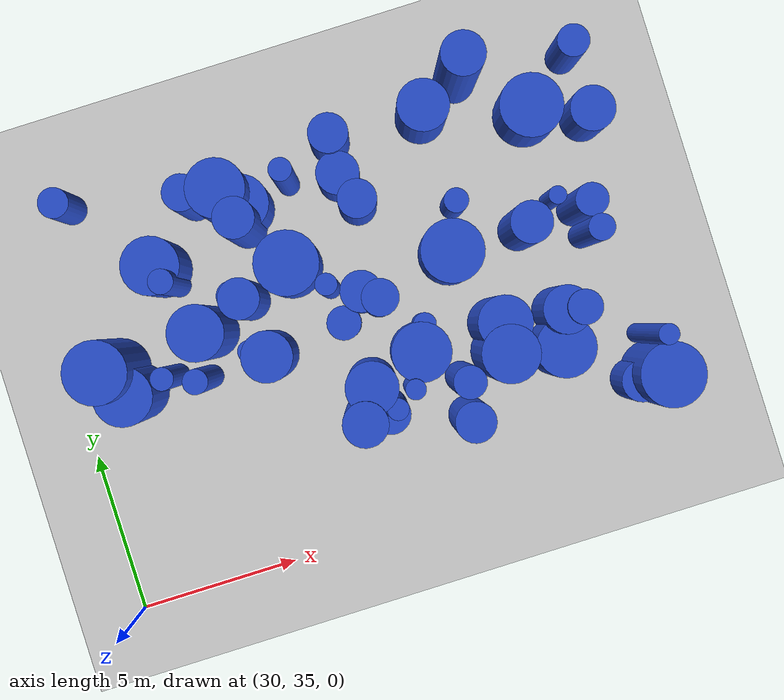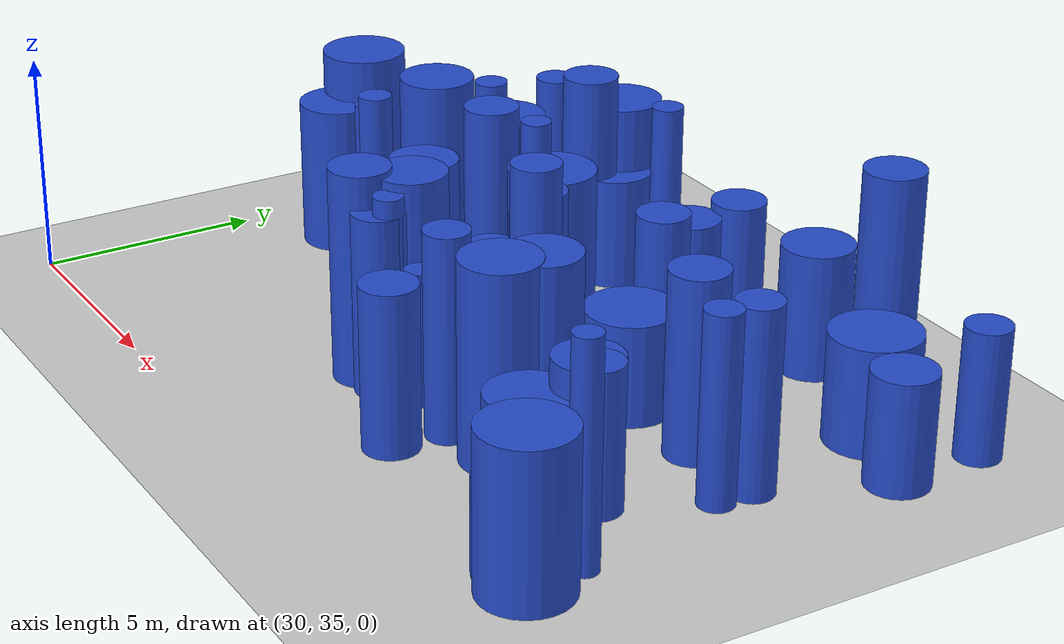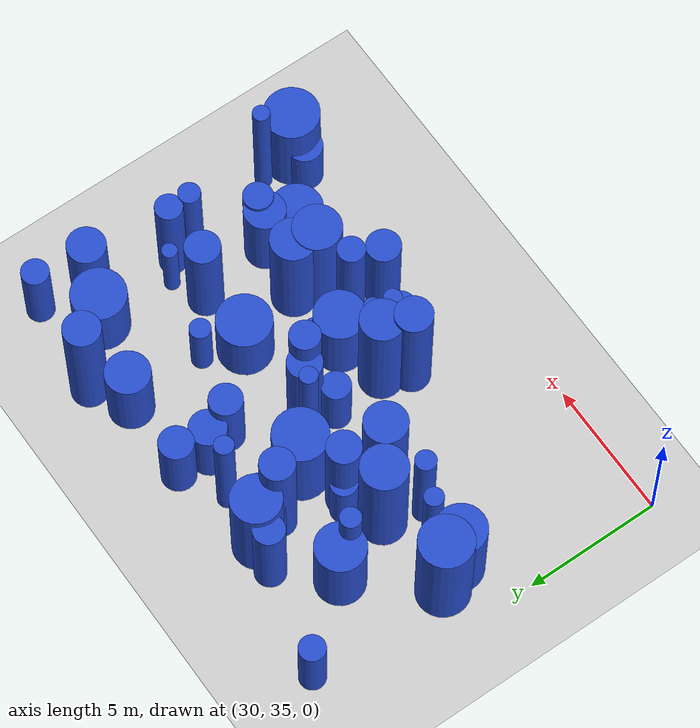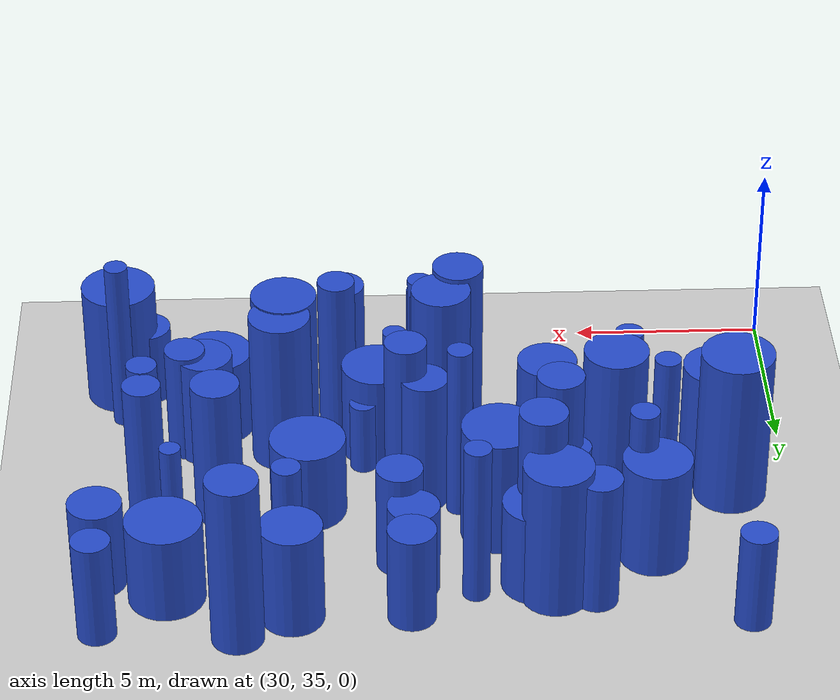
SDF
<sdf version="1.6">
 <world name="default">
  <model name="ground_plane">
   <static>1</static>
   <link name="link">
    <collision name="collision">
     <geometry><plane><normal>0 0 1</normal><size>100 100</size></plane></geometry>
     <surface><friction><ode><mu>100</mu><mu2>50</mu2></ode></friction></surface>
    </collision>
    <visual name="visual">
     <cast_shadows>0</cast_shadows>
     <geometry><plane><normal>0 0 1</normal><size>100 100</size></plane></geometry>
     <material>
      <script><uri>file://media/materials/scripts/gazebo.material</uri><name>Gazebo/Grey</name></script>
     </material>
    </visual>
   </link>
  </model>
  <model name="9">
   <static>0</static>
   <link name="link">
    <inertial>
     <mass>2</mass>
     <inertia><ixx>1.68993</ixx><ixy>0</ixy><ixz>0</ixz><iyy>1.68993</iyy><iyz>0</iyz><izz>0.640182</izz></inertia>
    </inertial>
    <collision name="collision">
     <geometry><cylinder><length>2.86689</length><radius>0.800114</radius></cylinder></geometry>
     <surface><contact><collide_without_contact>1</collide_without_contact></contact></surface>
    </collision>
    <visual name="visual">
     <geometry><cylinder><length>2.86689</length><radius>0.800114</radius></cylinder></geometry>
     <material>
      <script><uri>file://media/materials/scripts/gazebo.material</uri><name>Gazebo/Blue</name></script>
     </material>
    </visual>
    <gravity>0</gravity>
   </link>
   <pose>42.9643 47.197 1.43344 0 -0 0</pose>
  </model>
  <model name="15">
   <static>0</static>
   <link name="link">
    <inertial>
     <mass>2</mass>
     <inertia>
      <ixx>0.941599</ixx>
      <ixy>0</ixy>
      <ixz>0</ixz>
      <iyy>0.941599</iyy>
      <iyz>0</iyz>
      <izz>0.406003</izz>
     </inertia>
    </inertial>
    <collision name="collision">
     <geometry><cylinder><length>2.10513</length><radius>0.637184</radius></cylinder></geometry>
     <surface><contact><collide_without_contact>1</collide_without_contact></contact></surface>
    </collision>
    <visual name="visual">
     <geometry><cylinder><length>2.10513</length><radius>0.637184</radius></cylinder></geometry>
     <material>
      <script><uri>file://media/materials/scripts/gazebo.material</uri><name>Gazebo/Blue</name></script>
     </material>
    </visual>
    <gravity>0</gravity>
   </link>
   <pose>46.8697 37.3288 1.05257 0 -0 0</pose>
  </model>
  <model name="25">
   <static>0</static>
   <link name="link">
    <inertial>
     <mass>2</mass>
     <inertia><ixx>2.00158</ixx><ixy>0</ixy><ixz>0</ixz><iyy>2.00158</iyy><iyz>0</iyz><izz>0.12036</izz></inertia>
    </inertial>
    <collision name="collision">
     <geometry><cylinder><length>3.41298</length><radius>0.346929</radius></cylinder></geometry>
     <surface><contact><collide_without_contact>1</collide_without_contact></contact></surface>
    </collision>
    <visual name="visual">
     <geometry><cylinder><length>3.41298</length><radius>0.346929</radius></cylinder></geometry>
     <material>
      <script><uri>file://media/materials/scripts/gazebo.material</uri><name>Gazebo/Blue</name></script>
     </material>
    </visual>
    <gravity>0</gravity>
   </link>
   <pose>42.8894 40.3109 1.70649 0 -0 0</pose>
  </model>
  <model name="28">
   <static>0</static>
   <link name="link">
    <inertial>
     <mass>2</mass>
     <inertia><ixx>3.70127</ixx><ixy>0</ixy><ixz>0</ixz><iyy>3.70127</iyy><iyz>0</iyz><izz>0.908045</izz></inertia>
    </inertial>
    <collision name="collision">
     <geometry><cylinder><length>4.41401</length><radius>0.952914</radius></cylinder></geometry>
     <surface><contact><collide_without_contact>1</collide_without_contact></contact></surface>
    </collision>
    <visual name="visual">
     <geometry><cylinder><length>4.41401</length><radius>0.952914</radius></cylinder></geometry>
     <material>
      <script><uri>file://media/materials/scripts/gazebo.material</uri><name>Gazebo/Blue</name></script>
     </material>
    </visual>
    <gravity>0</gravity>
   </link>
   <pose>31.5585 42.4736 2.20701 0 -0 0</pose>
  </model>
  <model name="30">
   <static>0</static>
   <link name="link">
    <inertial>
     <mass>2</mass>
     <inertia><ixx>1.34983</ixx><ixy>0</ixy><ixz>0</ixz><iyy>1.34983</iyy><iyz>0</iyz><izz>0.973345</izz></inertia>
    </inertial>
    <collision name="collision">
     <geometry><cylinder><length>2.27573</length><radius>0.986583</radius></cylinder></geometry>
     <surface><contact><collide_without_contact>1</collide_without_contact></contact></surface>
    </collision>
    <visual name="visual">
     <geometry><cylinder><length>2.27573</length><radius>0.986583</radius></cylinder></geometry>
     <material>
      <script><uri>file://media/materials/scripts/gazebo.material</uri><name>Gazebo/Blue</name></script>
     </material>
    </visual>
    <gravity>0</gravity>
   </link>
   <pose>42.5501 42.8164 1.13786 0 -0 0</pose>
  </model>
  <model name="35">
   <static>0</static>
   <link name="link">
    <inertial>
     <mass>2</mass>
     <inertia><ixx>4.18085</ixx><ixy>0</ixy><ixz>0</ixz><iyy>4.18085</iyy><iyz>0</iyz><izz>0.105493</izz></inertia>
    </inertial>
    <collision name="collision">
     <geometry><cylinder><length>4.97681</length><radius>0.324796</radius></cylinder></geometry>
     <surface><contact><collide_without_contact>1</collide_without_contact></contact></surface>
    </collision>
    <visual name="visual">
     <geometry><cylinder><length>4.97681</length><radius>0.324796</radius></cylinder></geometry>
     <material>
      <script><uri>file://media/materials/scripts/gazebo.material</uri><name>Gazebo/Blue</name></script>
     </material>
    </visual>
    <gravity>0</gravity>
   </link>
   <pose>38.6592 42.8925 2.4884 0 -0 0</pose>
  </model>
  <model name="37">
   <static>0</static>
   <link name="link">
    <inertial>
     <mass>2</mass>
     <inertia><ixx>2.41909</ixx><ixy>0</ixy><ixz>0</ixz><iyy>2.41909</iyy><iyz>0</iyz><izz>0.120372</izz></inertia>
    </inertial>
    <collision name="collision">
     <geometry><cylinder><length>3.76211</length><radius>0.346947</radius></cylinder></geometry>
     <surface><contact><collide_without_contact>1</collide_without_contact></contact></surface>
    </collision>
    <visual name="visual">
     <geometry><cylinder><length>3.76211</length><radius>0.346947</radius></cylinder></geometry>
     <material>
      <script><uri>file://media/materials/scripts/gazebo.material</uri><name>Gazebo/Blue</name></script>
     </material>
    </visual>
    <gravity>0</gravity>
   </link>
   <pose>33.2468 41.7347 1.88105 0 -0 0</pose>
  </model>
  <model name="40">
   <static>0</static>
   <link name="link">
    <inertial>
     <mass>2</mass>
     <inertia><ixx>1.05673</ixx><ixy>0</ixy><ixz>0</ixz><iyy>1.05673</iyy><iyz>0</iyz><izz>0.145747</izz></inertia>
    </inertial>
    <collision name="collision">
     <geometry><cylinder><length>2.42964</length><radius>0.381768</radius></cylinder></geometry>
     <surface><contact><collide_without_contact>1</collide_without_contact></contact></surface>
    </collision>
    <visual name="visual">
     <geometry><cylinder><length>2.42964</length><radius>0.381768</radius></cylinder></geometry>
     <material>
      <script><uri>file://media/materials/scripts/gazebo.material</uri><name>Gazebo/Blue</name></script>
     </material>
    </visual>
    <gravity>0</gravity>
   </link>
   <pose>43.0934 44.2266 1.21482 0 -0 0</pose>
  </model>
  <model name="104">
   <static>0</static>
   <link name="link">
    <inertial>
     <mass>2</mass>
     <inertia>
      <ixx>0.736949</ixx>
      <ixy>0</ixy>
      <ixz>0</ixz>
      <iyy>0.736949</iyy>
      <iyz>0</iyz>
      <izz>0.125997</izz>
     </inertia>
    </inertial>
    <collision name="collision">
     <geometry><cylinder><length>2.0109</length><radius>0.354961</radius></cylinder></geometry>
     <surface><contact><collide_without_contact>1</collide_without_contact></contact></surface>
    </collision>
    <visual name="visual">
     <geometry><cylinder><length>2.0109</length><radius>0.354961</radius></cylinder></geometry>
     <material>
      <script><uri>file://media/materials/scripts/gazebo.material</uri><name>Gazebo/Blue</name></script>
     </material>
    </visual>
    <gravity>0</gravity>
   </link>
   <pose>41.095 40.9536 1.00545 0 -0 0</pose>
  </model>
  <model name="106">
   <static>0</static>
   <link name="link">
    <inertial>
     <mass>2</mass>
     <inertia><ixx>2.37876</ixx><ixy>0</ixy><ixz>0</ixz><iyy>2.37876</iyy><iyz>0</iyz><izz>0.378388</izz></inertia>
    </inertial>
    <collision name="collision">
     <geometry><cylinder><length>3.62456</length><radius>0.615133</radius></cylinder></geometry>
     <surface><contact><collide_without_contact>1</collide_without_contact></contact></surface>
    </collision>
    <visual name="visual">
     <geometry><cylinder><length>3.62456</length><radius>0.615133</radius></cylinder></geometry>
     <material>
      <script><uri>file://media/materials/scripts/gazebo.material</uri><name>Gazebo/Blue</name></script>
     </material>
    </visual>
    <gravity>0</gravity>
   </link>
   <pose>41.6078 37.7844 1.81228 0 -0 0</pose>
  </model>
  <model name="110">
   <static>0</static>
   <link name="link">
    <inertial>
     <mass>2</mass>
     <inertia><ixx>2.97227</ixx><ixy>0</ixy><ixz>0</ixz><iyy>2.97227</iyy><iyz>0</iyz><izz>0.242223</izz></inertia>
    </inertial>
    <collision name="collision">
     <geometry><cylinder><length>4.13605</length><radius>0.492161</radius></cylinder></geometry>
     <surface><contact><collide_without_contact>1</collide_without_contact></contact></surface>
    </collision>
    <visual name="visual">
     <geometry><cylinder><length>4.13605</length><radius>0.492161</radius></cylinder></geometry>
     <material>
      <script><uri>file://media/materials/scripts/gazebo.material</uri><name>Gazebo/Blue</name></script>
     </material>
    </visual>
    <gravity>0</gravity>
   </link>
   <pose>46.6972 42.9691 2.06803 0 -0 0</pose>
  </model>
  <model name="115">
   <static>0</static>
   <link name="link">
    <inertial>
     <mass>2</mass>
     <inertia><ixx>3.61971</ixx><ixy>0</ixy><ixz>0</ixz><iyy>3.61971</iyy><iyz>0</iyz><izz>0.745024</izz></inertia>
    </inertial>
    <collision name="collision">
     <geometry><cylinder><length>4.41398</length><radius>0.863148</radius></cylinder></geometry>
     <surface><contact><collide_without_contact>1</collide_without_contact></contact></surface>
    </collision>
    <visual name="visual">
     <geometry><cylinder><length>4.41398</length><radius>0.863148</radius></cylinder></geometry>
     <material>
      <script><uri>file://media/materials/scripts/gazebo.material</uri><name>Gazebo/Blue</name></script>
     </material>
    </visual>
    <gravity>0</gravity>
   </link>
   <pose>43.1164 39.4255 2.20699 0 -0 0</pose>
  </model>
  <model name="131">
   <static>0</static>
   <link name="link">
    <inertial>
     <mass>2</mass>
     <inertia><ixx>2.45671</ixx><ixy>0</ixy><ixz>0</ixz><iyy>2.45671</iyy><iyz>0</iyz><izz>0.599774</izz></inertia>
    </inertial>
    <collision name="collision">
     <geometry><cylinder><length>3.59735</length><radius>0.77445</radius></cylinder></geometry>
     <surface><contact><collide_without_contact>1</collide_without_contact></contact></surface>
    </collision>
    <visual name="visual">
     <geometry><cylinder><length>3.59735</length><radius>0.77445</radius></cylinder></geometry>
     <material>
      <script><uri>file://media/materials/scripts/gazebo.material</uri><name>Gazebo/Blue</name></script>
     </material>
    </visual>
    <gravity>0</gravity>
   </link>
   <pose>36.3397 41.4394 1.79867 0 -0 0</pose>
  </model>
  <model name="140">
   <static>0</static>
   <link name="link">
    <inertial>
     <mass>2</mass>
     <inertia><ixx>1.66226</ixx><ixy>0</ixy><ixz>0</ixz><iyy>1.66226</iyy><iyz>0</iyz><izz>0.357537</izz></inertia>
    </inertial>
    <collision name="collision">
     <geometry><cylinder><length>2.98345</length><radius>0.597944</radius></cylinder></geometry>
     <surface><contact><collide_without_contact>1</collide_without_contact></contact></surface>
    </collision>
    <visual name="visual">
     <geometry><cylinder><length>2.98345</length><radius>0.597944</radius></cylinder></geometry>
     <material>
      <script><uri>file://media/materials/scripts/gazebo.material</uri><name>Gazebo/Blue</name></script>
     </material>
    </visual>
    <gravity>0</gravity>
   </link>
   <pose>40.2521 45.1222 1.49172 0 -0 0</pose>
  </model>
  <model name="153">
   <static>0</static>
   <link name="link">
    <inertial>
     <mass>2</mass>
     <inertia><ixx>3.80109</ixx><ixy>0</ixy><ixz>0</ixz><iyy>3.80109</iyy><iyz>0</iyz><izz>0.299501</izz></inertia>
    </inertial>
    <collision name="collision">
     <geometry><cylinder><length>4.6806</length><radius>0.547266</radius></cylinder></geometry>
     <surface><contact><collide_without_contact>1</collide_without_contact></contact></surface>
    </collision>
    <visual name="visual">
     <geometry><cylinder><length>4.6806</length><radius>0.547266</radius></cylinder></geometry>
     <material>
      <script><uri>file://media/materials/scripts/gazebo.material</uri><name>Gazebo/Blue</name></script>
     </material>
    </visual>
    <gravity>0</gravity>
   </link>
   <pose>40.0122 42.0886 2.3403 0 -0 0</pose>
  </model>
  <model name="161">
   <static>0</static>
   <link name="link">
    <inertial>
     <mass>2</mass>
     <inertia><ixx>1.50176</ixx><ixy>0</ixy><ixz>0</ixz><iyy>1.50176</iyy><iyz>0</iyz><izz>0.788703</izz></inertia>
    </inertial>
    <collision name="collision">
     <geometry><cylinder><length>2.57769</length><radius>0.888089</radius></cylinder></geometry>
     <surface><contact><collide_without_contact>1</collide_without_contact></contact></surface>
    </collision>
    <visual name="visual">
     <geometry><cylinder><length>2.57769</length><radius>0.888089</radius></cylinder></geometry>
     <material>
      <script><uri>file://media/materials/scripts/gazebo.material</uri><name>Gazebo/Blue</name></script>
     </material>
    </visual>
    <gravity>0</gravity>
   </link>
   <pose>36.8547 46.0717 1.28884 0 -0 0</pose>
  </model>
  <model name="184">
   <static>0</static>
   <link name="link">
    <inertial>
     <mass>2</mass>
     <inertia><ixx>1.29878</ixx><ixy>0</ixy><ixz>0</ixz><iyy>1.29878</iyy><iyz>0</iyz><izz>0.120251</izz></inertia>
    </inertial>
    <collision name="collision">
     <geometry><cylinder><length>2.72616</length><radius>0.346772</radius></cylinder></geometry>
     <surface><contact><collide_without_contact>1</collide_without_contact></contact></surface>
    </collision>
    <visual name="visual">
     <geometry><cylinder><length>2.72616</length><radius>0.346772</radius></cylinder></geometry>
     <material>
      <script><uri>file://media/materials/scripts/gazebo.material</uri><name>Gazebo/Blue</name></script>
     </material>
    </visual>
    <gravity>0</gravity>
   </link>
   <pose>35.8162 41.7483 1.36308 0 -0 0</pose>
  </model>
  <model name="192">
   <static>0</static>
   <link name="link">
    <inertial>
     <mass>2</mass>
     <inertia><ixx>4.03755</ixx><ixy>0</ixy><ixz>0</ixz><iyy>4.03755</iyy><iyz>0</iyz><izz>0.45095</izz></inertia>
    </inertial>
    <collision name="collision">
     <geometry><cylinder><length>4.78251</length><radius>0.671528</radius></cylinder></geometry>
     <surface><contact><collide_without_contact>1</collide_without_contact></contact></surface>
    </collision>
    <visual name="visual">
     <geometry><cylinder><length>4.78251</length><radius>0.671528</radius></cylinder></geometry>
     <material>
      <script><uri>file://media/materials/scripts/gazebo.material</uri><name>Gazebo/Blue</name></script>
     </material>
    </visual>
    <gravity>0</gravity>
   </link>
   <pose>38.5385 38.7639 2.39126 0 -0 0</pose>
  </model>
  <model name="212">
   <static>0</static>
   <link name="link">
    <inertial>
     <mass>2</mass>
     <inertia><ixx>1.27304</ixx><ixy>0</ixy><ixz>0</ixz><iyy>1.27304</iyy><iyz>0</iyz><izz>0.482865</izz></inertia>
    </inertial>
    <collision name="collision">
     <geometry><cylinder><length>2.48789</length><radius>0.694885</radius></cylinder></geometry>
     <surface><contact><collide_without_contact>1</collide_without_contact></contact></surface>
    </collision>
    <visual name="visual">
     <geometry><cylinder><length>2.48789</length><radius>0.694885</radius></cylinder></geometry>
     <material>
      <script><uri>file://media/materials/scripts/gazebo.material</uri><name>Gazebo/Blue</name></script>
     </material>
    </visual>
    <gravity>0</gravity>
   </link>
   <pose>47.8332 45.6357 1.24395 0 -0 0</pose>
  </model>
  <model name="215">
   <static>0</static>
   <link name="link">
    <inertial>
     <mass>2</mass>
     <inertia><ixx>1.03096</ixx><ixy>0</ixy><ixz>0</ixz><iyy>1.03096</iyy><iyz>0</iyz><izz>0.226787</izz></inertia>
    </inertial>
    <collision name="collision">
     <geometry><cylinder><length>2.34636</length><radius>0.476222</radius></cylinder></geometry>
     <surface><contact><collide_without_contact>1</collide_without_contact></contact></surface>
    </collision>
    <visual name="visual">
     <geometry><cylinder><length>2.34636</length><radius>0.476222</radius></cylinder></geometry>
     <material>
      <script><uri>file://media/materials/scripts/gazebo.material</uri><name>Gazebo/Blue</name></script>
     </material>
    </visual>
    <gravity>0</gravity>
   </link>
   <pose>35.7849 43.5015 1.17318 0 -0 0</pose>
  </model>
  <model name="233">
   <static>0</static>
   <link name="link">
    <inertial>
     <mass>2</mass>
     <inertia><ixx>2.84357</ixx><ixy>0</ixy><ixz>0</ixz><iyy>2.84357</iyy><iyz>0</iyz><izz>0.142275</izz></inertia>
    </inertial>
    <collision name="collision">
     <geometry><cylinder><length>4.07855</length><radius>0.377194</radius></cylinder></geometry>
     <surface><contact><collide_without_contact>1</collide_without_contact></contact></surface>
    </collision>
    <visual name="visual">
     <geometry><cylinder><length>4.07855</length><radius>0.377194</radius></cylinder></geometry>
     <material>
      <script><uri>file://media/materials/scripts/gazebo.material</uri><name>Gazebo/Blue</name></script>
     </material>
    </visual>
    <gravity>0</gravity>
   </link>
   <pose>34.0992 44.4327 2.03928 0 -0 0</pose>
  </model>
  <model name="237">
   <static>0</static>
   <link name="link">
    <inertial>
     <mass>2</mass>
     <inertia><ixx>2.95964</ixx><ixy>0</ixy><ixz>0</ixz><iyy>2.95964</iyy><iyz>0</iyz><izz>0.400042</izz></inertia>
    </inertial>
    <collision name="collision">
     <geometry><cylinder><length>4.06912</length><radius>0.632489</radius></cylinder></geometry>
     <surface><contact><collide_without_contact>1</collide_without_contact></contact></surface>
    </collision>
    <visual name="visual">
     <geometry><cylinder><length>4.06912</length><radius>0.632489</radius></cylinder></geometry>
     <material>
      <script><uri>file://media/materials/scripts/gazebo.material</uri><name>Gazebo/Blue</name></script>
     </material>
    </visual>
    <gravity>0</gravity>
   </link>
   <pose>44.8521 42.8664 2.03456 0 -0 0</pose>
  </model>
  <model name="239">
   <static>0</static>
   <link name="link">
    <inertial>
     <mass>2</mass>
     <inertia><ixx>1.83196</ixx><ixy>0</ixy><ixz>0</ixz><iyy>1.83196</iyy><iyz>0</iyz><izz>0.283236</izz></inertia>
    </inertial>
    <collision name="collision">
     <geometry><cylinder><length>3.18466</length><radius>0.532199</radius></cylinder></geometry>
     <surface><contact><collide_without_contact>1</collide_without_contact></contact></surface>
    </collision>
    <visual name="visual">
     <geometry><cylinder><length>3.18466</length><radius>0.532199</radius></cylinder></geometry>
     <material>
      <script><uri>file://media/materials/scripts/gazebo.material</uri><name>Gazebo/Blue</name></script>
     </material>
    </visual>
    <gravity>0</gravity>
   </link>
   <pose>45.7332 40.0321 1.59233 0 -0 0</pose>
  </model>
  <model name="243">
   <static>0</static>
   <link name="link">
    <inertial>
     <mass>2</mass>
     <inertia><ixx>1.36174</ixx><ixy>0</ixy><ixz>0</ixz><iyy>1.36174</iyy><iyz>0</iyz><izz>0.22011</izz></inertia>
    </inertial>
    <collision name="collision">
     <geometry><cylinder><length>2.74046</length><radius>0.469159</radius></cylinder></geometry>
     <surface><contact><collide_without_contact>1</collide_without_contact></contact></surface>
    </collision>
    <visual name="visual">
     <geometry><cylinder><length>2.74046</length><radius>0.469159</radius></cylinder></geometry>
     <material>
      <script><uri>file://media/materials/scripts/gazebo.material</uri><name>Gazebo/Blue</name></script>
     </material>
    </visual>
    <gravity>0</gravity>
   </link>
   <pose>31.5642 47.7269 1.37023 0 -0 0</pose>
  </model>
  <model name="245">
   <static>0</static>
   <link name="link">
    <inertial>
     <mass>2</mass>
     <inertia>
      <ixx>1.58127</ixx>
      <ixy>0</ixy>
      <ixz>0</ixz>
      <iyy>1.58127</iyy>
      <iyz>0</iyz>
      <izz>0.0855253</izz>
     </inertia>
    </inertial>
    <collision name="collision">
     <geometry><cylinder><length>3.03827</length><radius>0.292447</radius></cylinder></geometry>
     <surface><contact><collide_without_contact>1</collide_without_contact></contact></surface>
    </collision>
    <visual name="visual">
     <geometry><cylinder><length>3.03827</length><radius>0.292447</radius></cylinder></geometry>
     <material>
      <script><uri>file://media/materials/scripts/gazebo.material</uri><name>Gazebo/Blue</name></script>
     </material>
    </visual>
    <gravity>0</gravity>
   </link>
   <pose>33.4925 44.957 1.51913 0 -0 0</pose>
  </model>
  <model name="259">
   <static>0</static>
   <link name="link">
    <inertial>
     <mass>2</mass>
     <inertia><ixx>3.51485</ixx><ixy>0</ixy><ixz>0</ixz><iyy>3.51485</iyy><iyz>0</iyz><izz>0.649994</izz></inertia>
    </inertial>
    <collision name="collision">
     <geometry><cylinder><length>4.37483</length><radius>0.806222</radius></cylinder></geometry>
     <surface><contact><collide_without_contact>1</collide_without_contact></contact></surface>
    </collision>
    <visual name="visual">
     <geometry><cylinder><length>4.37483</length><radius>0.806222</radius></cylinder></geometry>
     <material>
      <script><uri>file://media/materials/scripts/gazebo.material</uri><name>Gazebo/Blue</name></script>
     </material>
    </visual>
    <gravity>0</gravity>
   </link>
   <pose>43.2293 40.3251 2.18741 0 -0 0</pose>
  </model>
  <model name="275">
   <static>0</static>
   <link name="link">
    <inertial>
     <mass>2</mass>
     <inertia><ixx>2.62752</ixx><ixy>0</ixy><ixz>0</ixz><iyy>2.62752</iyy><iyz>0</iyz><izz>0.385146</izz></inertia>
    </inertial>
    <collision name="collision">
     <geometry><cylinder><length>3.82226</length><radius>0.620601</radius></cylinder></geometry>
     <surface><contact><collide_without_contact>1</collide_without_contact></contact></surface>
    </collision>
    <visual name="visual">
     <geometry><cylinder><length>3.82226</length><radius>0.620601</radius></cylinder></geometry>
     <material>
      <script><uri>file://media/materials/scripts/gazebo.material</uri><name>Gazebo/Blue</name></script>
     </material>
    </visual>
    <gravity>0</gravity>
   </link>
   <pose>39.5404 42.4374 1.91113 0 -0 0</pose>
  </model>
  <model name="276">
   <static>0</static>
   <link name="link">
    <inertial>
     <mass>2</mass>
     <inertia><ixx>1.95225</ixx><ixy>0</ixy><ixz>0</ixz><iyy>1.95225</iyy><iyz>0</iyz><izz>0.794959</izz></inertia>
    </inertial>
    <collision name="collision">
     <geometry><cylinder><length>3.05428</length><radius>0.891605</radius></cylinder></geometry>
     <surface><contact><collide_without_contact>1</collide_without_contact></contact></surface>
    </collision>
    <visual name="visual">
     <geometry><cylinder><length>3.05428</length><radius>0.891605</radius></cylinder></geometry>
     <material>
      <script><uri>file://media/materials/scripts/gazebo.material</uri><name>Gazebo/Blue</name></script>
     </material>
    </visual>
    <gravity>0</gravity>
   </link>
   <pose>33.7935 45.0467 1.52714 0 -0 0</pose>
  </model>
  <model name="284">
   <static>0</static>
   <link name="link">
    <inertial>
     <mass>2</mass>
     <inertia>
      <ixx>4.03619</ixx>
      <ixy>0</ixy>
      <ixz>0</ixz>
      <iyy>4.03619</iyy>
      <iyz>0</iyz>
      <izz>0.0936989</izz>
     </inertia>
    </inertial>
    <collision name="collision">
     <geometry><cylinder><length>4.89245</length><radius>0.306103</radius></cylinder></geometry>
     <surface><contact><collide_without_contact>1</collide_without_contact></contact></surface>
    </collision>
    <visual name="visual">
     <geometry><cylinder><length>4.89245</length><radius>0.306103</radius></cylinder></geometry>
     <material>
      <script><uri>file://media/materials/scripts/gazebo.material</uri><name>Gazebo/Blue</name></script>
     </material>
    </visual>
    <gravity>0</gravity>
   </link>
   <pose>47.4947 38.6512 2.44622 0 -0 0</pose>
  </model>
  <model name="296">
   <static>0</static>
   <link name="link">
    <inertial>
     <mass>2</mass>
     <inertia><ixx>1.42508</ixx><ixy>0</ixy><ixz>0</ixz><iyy>1.42508</iyy><iyz>0</iyz><izz>0.378466</izz></inertia>
    </inertial>
    <collision name="collision">
     <geometry><cylinder><length>2.72307</length><radius>0.615196</radius></cylinder></geometry>
     <surface><contact><collide_without_contact>1</collide_without_contact></contact></surface>
    </collision>
    <visual name="visual">
     <geometry><cylinder><length>2.72307</length><radius>0.615196</radius></cylinder></geometry>
     <material>
      <script><uri>file://media/materials/scripts/gazebo.material</uri><name>Gazebo/Blue</name></script>
     </material>
    </visual>
    <gravity>0</gravity>
   </link>
   <pose>40.0092 47.2708 1.36153 0 -0 0</pose>
  </model>
  <model name="301">
   <static>0</static>
   <link name="link">
    <inertial>
     <mass>2</mass>
     <inertia><ixx>1.53911</ixx><ixy>0</ixy><ixz>0</ixz><iyy>1.53911</iyy><iyz>0</iyz><izz>0.245079</izz></inertia>
    </inertial>
    <collision name="collision">
     <geometry><cylinder><length>2.91537</length><radius>0.495055</radius></cylinder></geometry>
     <surface><contact><collide_without_contact>1</collide_without_contact></contact></surface>
    </collision>
    <visual name="visual">
     <geometry><cylinder><length>2.91537</length><radius>0.495055</radius></cylinder></geometry>
     <material>
      <script><uri>file://media/materials/scripts/gazebo.material</uri><name>Gazebo/Blue</name></script>
     </material>
    </visual>
    <gravity>0</gravity>
   </link>
   <pose>47.7962 47.6853 1.45769 0 -0 0</pose>
  </model>
  <model name="306">
   <static>0</static>
   <link name="link">
    <inertial>
     <mass>2</mass>
     <inertia><ixx>2.44916</ixx><ixy>0</ixy><ixz>0</ixz><iyy>2.44916</iyy><iyz>0</iyz><izz>0.972924</izz></inertia>
    </inertial>
    <collision name="collision">
     <geometry><cylinder><length>3.43165</length><radius>0.986369</radius></cylinder></geometry>
     <surface><contact><collide_without_contact>1</collide_without_contact></contact></surface>
    </collision>
    <visual name="visual">
     <geometry><cylinder><length>3.43165</length><radius>0.986369</radius></cylinder></geometry>
     <material>
      <script><uri>file://media/materials/scripts/gazebo.material</uri><name>Gazebo/Blue</name></script>
     </material>
    </visual>
    <gravity>0</gravity>
   </link>
   <pose>47.5676 37.3707 1.71582 0 -0 0</pose>
  </model>
  <model name="309">
   <static>0</static>
   <link name="link">
    <inertial>
     <mass>2</mass>
     <inertia><ixx>3.91646</ixx><ixy>0</ixy><ixz>0</ixz><iyy>3.91646</iyy><iyz>0</iyz><izz>0.608507</izz></inertia>
    </inertial>
    <collision name="collision">
     <geometry><cylinder><length>4.65545</length><radius>0.780069</radius></cylinder></geometry>
     <surface><contact><collide_without_contact>1</collide_without_contact></contact></surface>
    </collision>
    <visual name="visual">
     <geometry><cylinder><length>4.65545</length><radius>0.780069</radius></cylinder></geometry>
     <material>
      <script><uri>file://media/materials/scripts/gazebo.material</uri><name>Gazebo/Blue</name></script>
     </material>
    </visual>
    <gravity>0</gravity>
   </link>
   <pose>39.0192 39.6897 2.32773 0 -0 0</pose>
  </model>
  <model name="317">
   <static>0</static>
   <link name="link">
    <inertial>
     <mass>2</mass>
     <inertia><ixx>2.37053</ixx><ixy>0</ixy><ixz>0</ixz><iyy>2.37053</iyy><iyz>0</iyz><izz>0.801809</izz></inertia>
    </inertial>
    <collision name="collision">
     <geometry><cylinder><length>3.43769</length><radius>0.895438</radius></cylinder></geometry>
     <surface><contact><collide_without_contact>1</collide_without_contact></contact></surface>
    </collision>
    <visual name="visual">
     <geometry><cylinder><length>3.43769</length><radius>0.895438</radius></cylinder></geometry>
     <material>
      <script><uri>file://media/materials/scripts/gazebo.material</uri><name>Gazebo/Blue</name></script>
     </material>
    </visual>
    <gravity>0</gravity>
   </link>
   <pose>31.9372 41.5817 1.71885 0 -0 0</pose>
  </model>
  <model name="320">
   <static>0</static>
   <link name="link">
    <inertial>
     <mass>2</mass>
     <inertia><ixx>4.06409</ixx><ixy>0</ixy><ixz>0</ixz><iyy>4.06409</iyy><iyz>0</iyz><izz>0.691368</izz></inertia>
    </inertial>
    <collision name="collision">
     <geometry><cylinder><length>4.72339</length><radius>0.831485</radius></cylinder></geometry>
     <surface><contact><collide_without_contact>1</collide_without_contact></contact></surface>
    </collision>
    <visual name="visual">
     <geometry><cylinder><length>4.72339</length><radius>0.831485</radius></cylinder></geometry>
     <material>
      <script><uri>file://media/materials/scripts/gazebo.material</uri><name>Gazebo/Blue</name></script>
     </material>
    </visual>
    <gravity>0</gravity>
   </link>
   <pose>34.6906 42.6895 2.3617 0 -0 0</pose>
  </model>
  <model name="327">
   <static>0</static>
   <link name="link">
    <inertial>
     <mass>2</mass>
     <inertia><ixx>3.26541</ixx><ixy>0</ixy><ixz>0</ixz><iyy>3.26541</iyy><iyz>0</iyz><izz>0.139894</izz></inertia>
    </inertial>
    <collision name="collision">
     <geometry><cylinder><length>4.37868</length><radius>0.374023</radius></cylinder></geometry>
     <surface><contact><collide_without_contact>1</collide_without_contact></contact></surface>
    </collision>
    <visual name="visual">
     <geometry><cylinder><length>4.37868</length><radius>0.374023</radius></cylinder></geometry>
     <material>
      <script><uri>file://media/materials/scripts/gazebo.material</uri><name>Gazebo/Blue</name></script>
     </material>
    </visual>
    <gravity>0</gravity>
   </link>
   <pose>34.2317 41.3681 2.18934 0 -0 0</pose>
  </model>
  <model name="334">
   <static>0</static>
   <link name="link">
    <inertial>
     <mass>2</mass>
     <inertia><ixx>1.40771</ixx><ixy>0</ixy><ixz>0</ixz><iyy>1.40771</iyy><iyz>0</iyz><izz>0.861067</izz></inertia>
    </inertial>
    <collision name="collision">
     <geometry><cylinder><length>2.42137</length><radius>0.927937</radius></cylinder></geometry>
     <surface><contact><collide_without_contact>1</collide_without_contact></contact></surface>
    </collision>
    <visual name="visual">
     <geometry><cylinder><length>2.42137</length><radius>0.927937</radius></cylinder></geometry>
     <material>
      <script><uri>file://media/materials/scripts/gazebo.material</uri><name>Gazebo/Blue</name></script>
     </material>
    </visual>
    <gravity>0</gravity>
   </link>
   <pose>44.9341 39.0111 1.21069 0 -0 0</pose>
  </model>
  <model name="342">
   <static>0</static>
   <link name="link">
    <inertial>
     <mass>2</mass>
     <inertia><ixx>3.10811</ixx><ixy>0</ixy><ixz>0</ixz><iyy>3.10811</iyy><iyz>0</iyz><izz>0.787726</izz></inertia>
    </inertial>
    <collision name="collision">
     <geometry><cylinder><length>4.03553</length><radius>0.887539</radius></cylinder></geometry>
     <surface><contact><collide_without_contact>1</collide_without_contact></contact></surface>
    </collision>
    <visual name="visual">
     <geometry><cylinder><length>4.03553</length><radius>0.887539</radius></cylinder></geometry>
     <material>
      <script><uri>file://media/materials/scripts/gazebo.material</uri><name>Gazebo/Blue</name></script>
     </material>
    </visual>
    <gravity>0</gravity>
   </link>
   <pose>36.3983 46.5454 2.01776 0 -0 0</pose>
  </model>
  <model name="351">
   <static>0</static>
   <link name="link">
    <inertial>
     <mass>2</mass>
     <inertia><ixx>1.14138</ixx><ixy>0</ixy><ixz>0</ixz><iyy>1.14138</iyy><iyz>0</iyz><izz>0.274423</izz></inertia>
    </inertial>
    <collision name="collision">
     <geometry><cylinder><length>2.45459</length><radius>0.523854</radius></cylinder></geometry>
     <surface><contact><collide_without_contact>1</collide_without_contact></contact></surface>
    </collision>
    <visual name="visual">
     <geometry><cylinder><length>2.45459</length><radius>0.523854</radius></cylinder></geometry>
     <material>
      <script><uri>file://media/materials/scripts/gazebo.material</uri><name>Gazebo/Blue</name></script>
     </material>
    </visual>
    <gravity>0</gravity>
   </link>
   <pose>38.7696 41.7148 1.2273 0 -0 0</pose>
  </model>
  <model name="373">
   <static>0</static>
   <link name="link">
    <inertial>
     <mass>2</mass>
     <inertia><ixx>2.5111</ixx><ixy>0</ixy><ixz>0</ixz><iyy>2.5111</iyy><iyz>0</iyz><izz>0.309065</izz></inertia>
    </inertial>
    <collision name="collision">
     <geometry><cylinder><length>3.76024</length><radius>0.555936</radius></cylinder></geometry>
     <surface><contact><collide_without_contact>1</collide_without_contact></contact></surface>
    </collision>
    <visual name="visual">
     <geometry><cylinder><length>3.76024</length><radius>0.555936</radius></cylinder></geometry>
     <material>
      <script><uri>file://media/materials/scripts/gazebo.material</uri><name>Gazebo/Blue</name></script>
     </material>
    </visual>
    <gravity>0</gravity>
   </link>
   <pose>35.3816 46.7532 1.88012 0 -0 0</pose>
  </model>
  <model name="375">
   <static>0</static>
   <link name="link">
    <inertial>
     <mass>2</mass>
     <inertia><ixx>1.28942</ixx><ixy>0</ixy><ixz>0</ixz><iyy>1.28942</iyy><iyz>0</iyz><izz>0.440998</izz></inertia>
    </inertial>
    <collision name="collision">
     <geometry><cylinder><length>2.5325</length><radius>0.664077</radius></cylinder></geometry>
     <surface><contact><collide_without_contact>1</collide_without_contact></contact></surface>
    </collision>
    <visual name="visual">
     <geometry><cylinder><length>2.5325</length><radius>0.664077</radius></cylinder></geometry>
     <material>
      <script><uri>file://media/materials/scripts/gazebo.material</uri><name>Gazebo/Blue</name></script>
     </material>
    </visual>
    <gravity>0</gravity>
   </link>
   <pose>39.9305 46.0707 1.26625 0 -0 0</pose>
  </model>
  <model name="379">
   <static>0</static>
   <link name="link">
    <inertial>
     <mass>2</mass>
     <inertia><ixx>3.45768</ixx><ixy>0</ixy><ixz>0</ixz><iyy>3.45768</iyy><iyz>0</iyz><izz>0.120664</izz></inertia>
    </inertial>
    <collision name="collision">
     <geometry><cylinder><length>4.51487</length><radius>0.347367</radius></cylinder></geometry>
     <surface><contact><collide_without_contact>1</collide_without_contact></contact></surface>
    </collision>
    <visual name="visual">
     <geometry><cylinder><length>4.51487</length><radius>0.347367</radius></cylinder></geometry>
     <material>
      <script><uri>file://media/materials/scripts/gazebo.material</uri><name>Gazebo/Blue</name></script>
     </material>
    </visual>
    <gravity>0</gravity>
   </link>
   <pose>38.3731 46.4341 2.25744 0 -0 0</pose>
  </model>
  <model name="381">
   <static>0</static>
   <link name="link">
    <inertial>
     <mass>2</mass>
     <inertia><ixx>4.16095</ixx><ixy>0</ixy><ixz>0</ixz><iyy>4.16095</iyy><iyz>0</iyz><izz>0.376691</izz></inertia>
    </inertial>
    <collision name="collision">
     <geometry><cylinder><length>4.88217</length><radius>0.613751</radius></cylinder></geometry>
     <surface><contact><collide_without_contact>1</collide_without_contact></contact></surface>
    </collision>
    <visual name="visual">
     <geometry><cylinder><length>4.88217</length><radius>0.613751</radius></cylinder></geometry>
     <material>
      <script><uri>file://media/materials/scripts/gazebo.material</uri><name>Gazebo/Blue</name></script>
     </material>
    </visual>
    <gravity>0</gravity>
   </link>
   <pose>36.7139 45.4825 2.44109 0 -0 0</pose>
  </model>
  <model name="388">
   <static>0</static>
   <link name="link">
    <inertial>
     <mass>2</mass>
     <inertia><ixx>4.18595</ixx><ixy>0</ixy><ixz>0</ixz><iyy>4.18595</iyy><iyz>0</iyz><izz>0.440767</izz></inertia>
    </inertial>
    <collision name="collision">
     <geometry><cylinder><length>4.87785</length><radius>0.663903</radius></cylinder></geometry>
     <surface><contact><collide_without_contact>1</collide_without_contact></contact></surface>
    </collision>
    <visual name="visual">
     <geometry><cylinder><length>4.87785</length><radius>0.663903</radius></cylinder></geometry>
     <material>
      <script><uri>file://media/materials/scripts/gazebo.material</uri><name>Gazebo/Blue</name></script>
     </material>
    </visual>
    <gravity>0</gravity>
   </link>
   <pose>44.3203 47.9749 2.43892 0 -0 0</pose>
  </model>
  <model name="390">
   <static>0</static>
   <link name="link">
    <inertial>
     <mass>2</mass>
     <inertia>
      <ixx>1.10121</ixx>
      <ixy>0</ixy>
      <ixz>0</ixz>
      <iyy>1.10121</iyy>
      <iyz>0</iyz>
      <izz>0.0773762</izz>
     </inertia>
    </inertial>
    <collision name="collision">
     <geometry><cylinder><length>2.5249</length><radius>0.278166</radius></cylinder></geometry>
     <surface><contact><collide_without_contact>1</collide_without_contact></contact></surface>
    </collision>
    <visual name="visual">
     <geometry><cylinder><length>2.5249</length><radius>0.278166</radius></cylinder></geometry>
     <material>
      <script><uri>file://media/materials/scripts/gazebo.material</uri><name>Gazebo/Blue</name></script>
     </material>
    </visual>
    <gravity>0</gravity>
   </link>
   <pose>46.0363 43.462 1.26245 0 -0 0</pose>
  </model>
  <model name="401">
   <static>0</static>
   <link name="link">
    <inertial>
     <mass>2</mass>
     <inertia>
      <ixx>1.57893</ixx>
      <ixy>0</ixy>
      <ixz>0</ixz>
      <iyy>1.57893</iyy>
      <iyz>0</iyz>
      <izz>0.0991754</izz>
     </inertia>
    </inertial>
    <collision name="collision">
     <geometry><cylinder><length>3.0292</length><radius>0.314921</radius></cylinder></geometry>
     <surface><contact><collide_without_contact>1</collide_without_contact></contact></surface>
    </collision>
    <visual name="visual">
     <geometry><cylinder><length>3.0292</length><radius>0.314921</radius></cylinder></geometry>
     <material>
      <script><uri>file://media/materials/scripts/gazebo.material</uri><name>Gazebo/Blue</name></script>
     </material>
    </visual>
    <gravity>0</gravity>
   </link>
   <pose>40.2276 39.1948 1.5146 0 -0 0</pose>
  </model>
  <model name="410">
   <static>0</static>
   <link name="link">
    <inertial>
     <mass>2</mass>
     <inertia><ixx>1.62699</ixx><ixy>0</ixy><ixz>0</ixz><iyy>1.62699</iyy><iyz>0</iyz><izz>0.840334</izz></inertia>
    </inertial>
    <collision name="collision">
     <geometry><cylinder><length>2.6909</length><radius>0.916697</radius></cylinder></geometry>
     <surface><contact><collide_without_contact>1</collide_without_contact></contact></surface>
    </collision>
    <visual name="visual">
     <geometry><cylinder><length>2.6909</length><radius>0.916697</radius></cylinder></geometry>
     <material>
      <script><uri>file://media/materials/scripts/gazebo.material</uri><name>Gazebo/Blue</name></script>
     </material>
    </visual>
    <gravity>0</gravity>
   </link>
   <pose>40.7279 40.1865 1.34545 0 -0 0</pose>
  </model>
  <model name="421">
   <static>0</static>
   <link name="link">
    <inertial>
     <mass>2</mass>
     <inertia><ixx>1.83248</ixx><ixy>0</ixy><ixz>0</ixz><iyy>1.83248</iyy><iyz>0</iyz><izz>0.549062</izz></inertia>
    </inertial>
    <collision name="collision">
     <geometry><cylinder><length>3.0574</length><radius>0.740987</radius></cylinder></geometry>
     <surface><contact><collide_without_contact>1</collide_without_contact></contact></surface>
    </collision>
    <visual name="visual">
     <geometry><cylinder><length>3.0574</length><radius>0.740987</radius></cylinder></geometry>
     <material>
      <script><uri>file://media/materials/scripts/gazebo.material</uri><name>Gazebo/Blue</name></script>
     </material>
    </visual>
    <gravity>0</gravity>
   </link>
   <pose>45.2298 40.1135 1.5287 0 -0 0</pose>
  </model>
  <model name="424">
   <static>0</static>
   <link name="link">
    <inertial>
     <mass>2</mass>
     <inertia><ixx>3.56254</ixx><ixy>0</ixy><ixz>0</ixz><iyy>3.56254</iyy><iyz>0</iyz><izz>0.239947</izz></inertia>
    </inertial>
    <collision name="collision">
     <geometry><cylinder><length>4.54482</length><radius>0.489844</radius></cylinder></geometry>
     <surface><contact><collide_without_contact>1</collide_without_contact></contact></surface>
    </collision>
    <visual name="visual">
     <geometry><cylinder><length>4.54482</length><radius>0.489844</radius></cylinder></geometry>
     <material>
      <script><uri>file://media/materials/scripts/gazebo.material</uri><name>Gazebo/Blue</name></script>
     </material>
    </visual>
    <gravity>0</gravity>
   </link>
   <pose>41.7455 39.0096 2.27241 0 -0 0</pose>
  </model>
  <model name="426">
   <static>0</static>
   <link name="link">
    <inertial>
     <mass>2</mass>
     <inertia><ixx>2.98367</ixx><ixy>0</ixy><ixz>0</ixz><iyy>2.98367</iyy><iyz>0</iyz><izz>0.158838</izz></inertia>
    </inertial>
    <collision name="collision">
     <geometry><cylinder><length>4.17439</length><radius>0.398545</radius></cylinder></geometry>
     <surface><contact><collide_without_contact>1</collide_without_contact></contact></surface>
    </collision>
    <visual name="visual">
     <geometry><cylinder><length>4.17439</length><radius>0.398545</radius></cylinder></geometry>
     <material>
      <script><uri>file://media/materials/scripts/gazebo.material</uri><name>Gazebo/Blue</name></script>
     </material>
    </visual>
    <gravity>0</gravity>
   </link>
   <pose>46.7215 42.1232 2.08719 0 -0 0</pose>
  </model>
  <model name="456">
   <static>0</static>
   <link name="link">
    <inertial>
     <mass>2</mass>
     <inertia><ixx>3.37264</ixx><ixy>0</ixy><ixz>0</ixz><iyy>3.37264</iyy><iyz>0</iyz><izz>0.10412</izz></inertia>
    </inertial>
    <collision name="collision">
     <geometry><cylinder><length>4.46357</length><radius>0.322677</radius></cylinder></geometry>
     <surface><contact><collide_without_contact>1</collide_without_contact></contact></surface>
    </collision>
    <visual name="visual">
     <geometry><cylinder><length>4.46357</length><radius>0.322677</radius></cylinder></geometry>
     <material>
      <script><uri>file://media/materials/scripts/gazebo.material</uri><name>Gazebo/Blue</name></script>
     </material>
    </visual>
    <gravity>0</gravity>
   </link>
   <pose>39.5489 38.8845 2.23179 0 -0 0</pose>
  </model>
  <model name="466">
   <static>0</static>
   <link name="link">
    <inertial>
     <mass>2</mass>
     <inertia><ixx>3.40388</ixx><ixy>0</ixy><ixz>0</ixz><iyy>3.40388</iyy><iyz>0</iyz><izz>0.376733</izz></inertia>
    </inertial>
    <collision name="collision">
     <geometry><cylinder><length>4.39239</length><radius>0.613786</radius></cylinder></geometry>
     <surface><contact><collide_without_contact>1</collide_without_contact></contact></surface>
    </collision>
    <visual name="visual">
     <geometry><cylinder><length>4.39239</length><radius>0.613786</radius></cylinder></geometry>
     <material>
      <script><uri>file://media/materials/scripts/gazebo.material</uri><name>Gazebo/Blue</name></script>
     </material>
    </visual>
    <gravity>0</gravity>
   </link>
   <pose>36.1269 43.2691 2.19619 0 -0 0</pose>
  </model>
  <model name="474">
   <static>0</static>
   <link name="link">
    <inertial>
     <mass>2</mass>
     <inertia><ixx>1.44689</ixx><ixy>0</ixy><ixz>0</ixz><iyy>1.44689</iyy><iyz>0</iyz><izz>0.964365</izz></inertia>
    </inertial>
    <collision name="collision">
     <geometry><cylinder><length>2.40588</length><radius>0.982021</radius></cylinder></geometry>
     <surface><contact><collide_without_contact>1</collide_without_contact></contact></surface>
    </collision>
    <visual name="visual">
     <geometry><cylinder><length>2.40588</length><radius>0.982021</radius></cylinder></geometry>
     <material>
      <script><uri>file://media/materials/scripts/gazebo.material</uri><name>Gazebo/Blue</name></script>
     </material>
    </visual>
    <gravity>0</gravity>
   </link>
   <pose>46.1154 46.2858 1.20294 0 -0 0</pose>
  </model>
  <model name="493">
   <static>0</static>
   <link name="link">
    <inertial>
     <mass>2</mass>
     <inertia><ixx>2.91549</ixx><ixy>0</ixy><ixz>0</ixz><iyy>2.91549</iyy><iyz>0</iyz><izz>0.340692</izz></inertia>
    </inertial>
    <collision name="collision">
     <geometry><cylinder><length>4.05843</length><radius>0.583688</radius></cylinder></geometry>
     <surface><contact><collide_without_contact>1</collide_without_contact></contact></surface>
    </collision>
    <visual name="visual">
     <geometry><cylinder><length>4.05843</length><radius>0.583688</radius></cylinder></geometry>
     <material>
      <script><uri>file://media/materials/scripts/gazebo.material</uri><name>Gazebo/Blue</name></script>
     </material>
    </visual>
    <gravity>0</gravity>
   </link>
   <pose>39.3088 38.7766 2.02922 0 -0 0</pose>
  </model>
  <model name="494">
   <static>0</static>
   <link name="link">
    <inertial>
     <mass>2</mass>
     <inertia><ixx>2.32968</ixx><ixy>0</ixy><ixz>0</ixz><iyy>2.32968</iyy><iyz>0</iyz><izz>0.969733</izz></inertia>
    </inertial>
    <collision name="collision">
     <geometry><cylinder><length>3.327</length><radius>0.98475</radius></cylinder></geometry>
     <surface><contact><collide_without_contact>1</collide_without_contact></contact></surface>
    </collision>
    <visual name="visual">
     <geometry><cylinder><length>3.327</length><radius>0.98475</radius></cylinder></geometry>
     <material>
      <script><uri>file://media/materials/scripts/gazebo.material</uri><name>Gazebo/Blue</name></script>
     </material>
    </visual>
    <gravity>0</gravity>
   </link>
   <pose>37.6861 43.902 1.6635 0 -0 0</pose>
  </model>
 </world>
</sdf>
